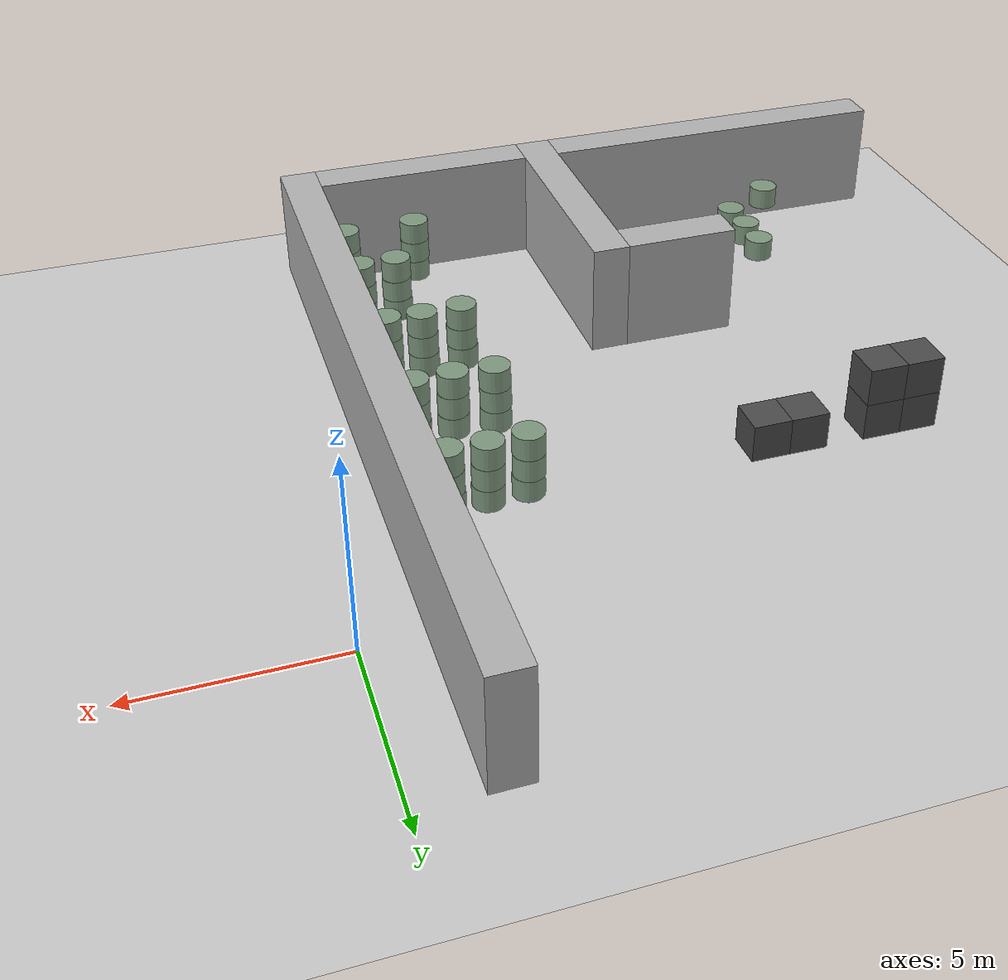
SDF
<sdf version="1.6">
 <world name="default">
  <include><uri>model://ground_plane</uri></include>
  <model name="wall_2">
   <pose>-9.0 -13.0 1.5 0 -0 0</pose>
   <static>True</static>
   <link name="link">
    <inertial>
     <mass>100</mass>
     <inertia>
      <ixx>0.166667</ixx>
      <ixy>0</ixy>
      <ixz>0</ixz>
      <iyy>0.166667</iyy>
      <iyz>0</iyz>
      <izz>0.166667</izz>
     </inertia>
    </inertial>
    <collision name="collision"><geometry><box><size>1.0 7.0 3.0</size></box></geometry></collision>
    <visual name="visual">
     <geometry><box><size>1.0 7.0 3.0</size></box></geometry>
     <material><ambient>0.7 0.7 0.7 1</ambient><diffuse>0.7 0.7 0.7 1</diffuse></material>
    </visual>
   </link>
  </model>
  <model name="wall_4">
   <pose>-2.0 -6.0 1.5 0 -0 0</pose>
   <static>True</static>
   <link name="link">
    <inertial>
     <mass>100</mass>
     <inertia>
      <ixx>0.166667</ixx>
      <ixy>0</ixy>
      <ixz>0</ixz>
      <iyy>0.166667</iyy>
      <iyz>0</iyz>
      <izz>0.166667</izz>
     </inertia>
    </inertial>
    <collision name="collision"><geometry><box><size>1.0 21.0 3.0</size></box></geometry></collision>
    <visual name="visual">
     <geometry><box><size>1.0 21.0 3.0</size></box></geometry>
     <material><ambient>0.7 0.7 0.7 1</ambient><diffuse>0.7 0.7 0.7 1</diffuse></material>
    </visual>
   </link>
  </model>
  <model name="wall_5">
   <pose>-14.5 -16.0 1.5 0 -0 0</pose>
   <static>True</static>
   <link name="link">
    <inertial>
     <mass>100</mass>
     <inertia>
      <ixx>0.166667</ixx>
      <ixy>0</ixy>
      <ixz>0</ixz>
      <iyy>0.166667</iyy>
      <iyz>0</iyz>
      <izz>0.166667</izz>
     </inertia>
    </inertial>
    <collision name="collision"><geometry><box><size>10.0 1.0 3.0</size></box></geometry></collision>
    <visual name="visual">
     <geometry><box><size>10.0 1.0 3.0</size></box></geometry>
     <material><ambient>0.7 0.7 0.7 1</ambient><diffuse>0.7 0.7 0.7 1</diffuse></material>
    </visual>
   </link>
  </model>
  <model name="wall_6">
   <pose>-5.5 -16.0 1.5 0 -0 0</pose>
   <static>True</static>
   <link name="link">
    <inertial>
     <mass>100</mass>
     <inertia>
      <ixx>0.166667</ixx>
      <ixy>0</ixy>
      <ixz>0</ixz>
      <iyy>0.166667</iyy>
      <iyz>0</iyz>
      <izz>0.166667</izz>
     </inertia>
    </inertial>
    <collision name="collision"><geometry><box><size>6.0 1.0 3.0</size></box></geometry></collision>
    <visual name="visual">
     <geometry><box><size>6.0 1.0 3.0</size></box></geometry>
     <material><ambient>0.7 0.7 0.7 1</ambient><diffuse>0.7 0.7 0.7 1</diffuse></material>
    </visual>
   </link>
  </model>
  <model name="wall_8">
   <pose>-11.0 -10.0 1.5 0 -0 0</pose>
   <static>True</static>
   <link name="link">
    <inertial>
     <mass>100</mass>
     <inertia>
      <ixx>0.166667</ixx>
      <ixy>0</ixy>
      <ixz>0</ixz>
      <iyy>0.166667</iyy>
      <iyz>0</iyz>
      <izz>0.166667</izz>
     </inertia>
    </inertial>
    <collision name="collision"><geometry><box><size>3.0 1.0 3.0</size></box></geometry></collision>
    <visual name="visual">
     <geometry><box><size>3.0 1.0 3.0</size></box></geometry>
     <material><ambient>0.7 0.7 0.7 1</ambient><diffuse>0.7 0.7 0.7 1</diffuse></material>
    </visual>
   </link>
  </model>
  <model name="unit_box_33">
   <pose>-15.0 -4.0 0.5 0 -0 0</pose>
   <static>True</static>
   <link name="link">
    <inertial>
     <mass>100</mass>
     <inertia>
      <ixx>0.166667</ixx>
      <ixy>0</ixy>
      <ixz>0</ixz>
      <iyy>0.166667</iyy>
      <iyz>0</iyz>
      <izz>0.166667</izz>
     </inertia>
    </inertial>
    <collision name="collision"><geometry><box><size>1.0 1.0 1.0</size></box></geometry></collision>
    <visual name="visual">
     <geometry><box><size>1.0 1.0 1.0</size></box></geometry>
     <material><ambient>0.3 0.3 0.3 1</ambient><diffuse>0.3 0.3 0.3 1</diffuse></material>
    </visual>
   </link>
  </model>
  <model name="unit_box_34">
   <pose>-15.0 -4.0 1.5 0 -0 0</pose>
   <static>True</static>
   <link name="link">
    <inertial>
     <mass>100</mass>
     <inertia>
      <ixx>0.166667</ixx>
      <ixy>0</ixy>
      <ixz>0</ixz>
      <iyy>0.166667</iyy>
      <iyz>0</iyz>
      <izz>0.166667</izz>
     </inertia>
    </inertial>
    <collision name="collision"><geometry><box><size>1.0 1.0 1.0</size></box></geometry></collision>
    <visual name="visual">
     <geometry><box><size>1.0 1.0 1.0</size></box></geometry>
     <material><ambient>0.3 0.3 0.3 1</ambient><diffuse>0.3 0.3 0.3 1</diffuse></material>
    </visual>
   </link>
  </model>
  <model name="unit_box_41">
   <pose>-14.0 -4.0 0.5 0 -0 0</pose>
   <static>True</static>
   <link name="link">
    <inertial>
     <mass>100</mass>
     <inertia>
      <ixx>0.166667</ixx>
      <ixy>0</ixy>
      <ixz>0</ixz>
      <iyy>0.166667</iyy>
      <iyz>0</iyz>
      <izz>0.166667</izz>
     </inertia>
    </inertial>
    <collision name="collision"><geometry><box><size>1.0 1.0 1.0</size></box></geometry></collision>
    <visual name="visual">
     <geometry><box><size>1.0 1.0 1.0</size></box></geometry>
     <material><ambient>0.3 0.3 0.3 1</ambient><diffuse>0.3 0.3 0.3 1</diffuse></material>
    </visual>
   </link>
  </model>
  <model name="unit_box_42">
   <pose>-14.0 -4.0 1.5 0 -0 0</pose>
   <static>True</static>
   <link name="link">
    <inertial>
     <mass>100</mass>
     <inertia>
      <ixx>0.166667</ixx>
      <ixy>0</ixy>
      <ixz>0</ixz>
      <iyy>0.166667</iyy>
      <iyz>0</iyz>
      <izz>0.166667</izz>
     </inertia>
    </inertial>
    <collision name="collision"><geometry><box><size>1.0 1.0 1.0</size></box></geometry></collision>
    <visual name="visual">
     <geometry><box><size>1.0 1.0 1.0</size></box></geometry>
     <material><ambient>0.3 0.3 0.3 1</ambient><diffuse>0.3 0.3 0.3 1</diffuse></material>
    </visual>
   </link>
  </model>
  <model name="unit_box_49">
   <pose>-12.0 -4.0 0.5 0 -0 0</pose>
   <static>True</static>
   <link name="link">
    <inertial>
     <mass>100</mass>
     <inertia>
      <ixx>0.166667</ixx>
      <ixy>0</ixy>
      <ixz>0</ixz>
      <iyy>0.166667</iyy>
      <iyz>0</iyz>
      <izz>0.166667</izz>
     </inertia>
    </inertial>
    <collision name="collision"><geometry><box><size>1.0 1.0 1.0</size></box></geometry></collision>
    <visual name="visual">
     <geometry><box><size>1.0 1.0 1.0</size></box></geometry>
     <material><ambient>0.3 0.3 0.3 1</ambient><diffuse>0.3 0.3 0.3 1</diffuse></material>
    </visual>
   </link>
  </model>
  <model name="unit_box_54">
   <pose>-11.0 -4.0 0.5 0 -0 0</pose>
   <static>True</static>
   <link name="link">
    <inertial>
     <mass>100</mass>
     <inertia>
      <ixx>0.166667</ixx>
      <ixy>0</ixy>
      <ixz>0</ixz>
      <iyy>0.166667</iyy>
      <iyz>0</iyz>
      <izz>0.166667</izz>
     </inertia>
    </inertial>
    <collision name="collision"><geometry><box><size>1.0 1.0 1.0</size></box></geometry></collision>
    <visual name="visual">
     <geometry><box><size>1.0 1.0 1.0</size></box></geometry>
     <material><ambient>0.3 0.3 0.3 1</ambient><diffuse>0.3 0.3 0.3 1</diffuse></material>
    </visual>
   </link>
  </model>
  <model name="unit_cylinder_35">
   <pose>-16.0017025327 -15.0174725968 0.9 0 -0 0</pose>
   <static>True</static>
   <link name="link">
    <inertial>
     <mass>100</mass>
     <inertia><ixx>0.145833</ixx><ixy>0</ixy><ixz>0</ixz><iyy>0.145833</iyy><iyz>0</iyz><izz>0.125</izz></inertia>
    </inertial>
    <collision name="collision">
     <geometry><cylinder><radius>0.4</radius><length>0.6</length></cylinder></geometry>
     <max_contacts>100</max_contacts>
    </collision>
    <visual name="visual">
     <geometry><cylinder><radius>0.4</radius><length>0.6</length></cylinder></geometry>
     <material><ambient>0.5 0.6 0.5 1</ambient><diffuse>0.5 0.6 0.5 1</diffuse></material>
    </visual>
   </link>
  </model>
  <model name="unit_cylinder_40">
   <pose>-14.9698842537 -15.032074739 0.3 0 -0 0</pose>
   <static>True</static>
   <link name="link">
    <inertial>
     <mass>100</mass>
     <inertia><ixx>0.145833</ixx><ixy>0</ixy><ixz>0</ixz><iyy>0.145833</iyy><iyz>0</iyz><izz>0.125</izz></inertia>
    </inertial>
    <collision name="collision">
     <geometry><cylinder><radius>0.4</radius><length>0.6</length></cylinder></geometry>
     <max_contacts>100</max_contacts>
    </collision>
    <visual name="visual">
     <geometry><cylinder><radius>0.4</radius><length>0.6</length></cylinder></geometry>
     <material><ambient>0.5 0.6 0.5 1</ambient><diffuse>0.5 0.6 0.5 1</diffuse></material>
    </visual>
   </link>
  </model>
  <model name="unit_cylinder_41">
   <pose>-15.0192456255 -14.0317045803 0.3 0 -0 0</pose>
   <static>True</static>
   <link name="link">
    <inertial>
     <mass>100</mass>
     <inertia><ixx>0.145833</ixx><ixy>0</ixy><ixz>0</ixz><iyy>0.145833</iyy><iyz>0</iyz><izz>0.125</izz></inertia>
    </inertial>
    <collision name="collision">
     <geometry><cylinder><radius>0.4</radius><length>0.6</length></cylinder></geometry>
     <max_contacts>100</max_contacts>
    </collision>
    <visual name="visual">
     <geometry><cylinder><radius>0.4</radius><length>0.6</length></cylinder></geometry>
     <material><ambient>0.5 0.6 0.5 1</ambient><diffuse>0.5 0.6 0.5 1</diffuse></material>
    </visual>
   </link>
  </model>
  <model name="unit_cylinder_42">
   <pose>-14.9849227295 -13.0106490481 0.3 0 -0 0</pose>
   <static>True</static>
   <link name="link">
    <inertial>
     <mass>100</mass>
     <inertia><ixx>0.145833</ixx><ixy>0</ixy><ixz>0</ixz><iyy>0.145833</iyy><iyz>0</iyz><izz>0.125</izz></inertia>
    </inertial>
    <collision name="collision">
     <geometry><cylinder><radius>0.4</radius><length>0.6</length></cylinder></geometry>
     <max_contacts>100</max_contacts>
    </collision>
    <visual name="visual">
     <geometry><cylinder><radius>0.4</radius><length>0.6</length></cylinder></geometry>
     <material><ambient>0.5 0.6 0.5 1</ambient><diffuse>0.5 0.6 0.5 1</diffuse></material>
    </visual>
   </link>
  </model>
  <model name="unit_cylinder_57">
   <pose>-4.9613804963 -15.0505166294 0.3 0 -0 0</pose>
   <static>True</static>
   <link name="link">
    <inertial>
     <mass>100</mass>
     <inertia><ixx>0.145833</ixx><ixy>0</ixy><ixz>0</ixz><iyy>0.145833</iyy><iyz>0</iyz><izz>0.125</izz></inertia>
    </inertial>
    <collision name="collision">
     <geometry><cylinder><radius>0.4</radius><length>0.6</length></cylinder></geometry>
     <max_contacts>100</max_contacts>
    </collision>
    <visual name="visual">
     <geometry><cylinder><radius>0.4</radius><length>0.6</length></cylinder></geometry>
     <material><ambient>0.5 0.6 0.5 1</ambient><diffuse>0.5 0.6 0.5 1</diffuse></material>
    </visual>
   </link>
  </model>
  <model name="unit_cylinder_58">
   <pose>-4.9767464938 -15.0407295652 0.9 0 -0 0</pose>
   <static>True</static>
   <link name="link">
    <inertial>
     <mass>100</mass>
     <inertia><ixx>0.145833</ixx><ixy>0</ixy><ixz>0</ixz><iyy>0.145833</iyy><iyz>0</iyz><izz>0.125</izz></inertia>
    </inertial>
    <collision name="collision">
     <geometry><cylinder><radius>0.4</radius><length>0.6</length></cylinder></geometry>
     <max_contacts>100</max_contacts>
    </collision>
    <visual name="visual">
     <geometry><cylinder><radius>0.4</radius><length>0.6</length></cylinder></geometry>
     <material><ambient>0.5 0.6 0.5 1</ambient><diffuse>0.5 0.6 0.5 1</diffuse></material>
    </visual>
   </link>
  </model>
  <model name="unit_cylinder_59">
   <pose>-4.97793197165 -15.0420098136 1.5 0 -0 0</pose>
   <static>True</static>
   <link name="link">
    <inertial>
     <mass>100</mass>
     <inertia><ixx>0.145833</ixx><ixy>0</ixy><ixz>0</ixz><iyy>0.145833</iyy><iyz>0</iyz><izz>0.125</izz></inertia>
    </inertial>
    <collision name="collision">
     <geometry><cylinder><radius>0.4</radius><length>0.6</length></cylinder></geometry>
     <max_contacts>100</max_contacts>
    </collision>
    <visual name="visual">
     <geometry><cylinder><radius>0.4</radius><length>0.6</length></cylinder></geometry>
     <material><ambient>0.5 0.6 0.5 1</ambient><diffuse>0.5 0.6 0.5 1</diffuse></material>
    </visual>
   </link>
  </model>
  <model name="unit_cylinder_60">
   <pose>-5.02993349026 -10.0394371652 0.3 0 -0 0</pose>
   <static>True</static>
   <link name="link">
    <inertial>
     <mass>100</mass>
     <inertia><ixx>0.145833</ixx><ixy>0</ixy><ixz>0</ixz><iyy>0.145833</iyy><iyz>0</iyz><izz>0.125</izz></inertia>
    </inertial>
    <collision name="collision">
     <geometry><cylinder><radius>0.4</radius><length>0.6</length></cylinder></geometry>
     <max_contacts>100</max_contacts>
    </collision>
    <visual name="visual">
     <geometry><cylinder><radius>0.4</radius><length>0.6</length></cylinder></geometry>
     <material><ambient>0.5 0.6 0.5 1</ambient><diffuse>0.5 0.6 0.5 1</diffuse></material>
    </visual>
   </link>
  </model>
  <model name="unit_cylinder_61">
   <pose>-5.0137740236 -10.0515571988 0.9 0 -0 0</pose>
   <static>True</static>
   <link name="link">
    <inertial>
     <mass>100</mass>
     <inertia><ixx>0.145833</ixx><ixy>0</ixy><ixz>0</ixz><iyy>0.145833</iyy><iyz>0</iyz><izz>0.125</izz></inertia>
    </inertial>
    <collision name="collision">
     <geometry><cylinder><radius>0.4</radius><length>0.6</length></cylinder></geometry>
     <max_contacts>100</max_contacts>
    </collision>
    <visual name="visual">
     <geometry><cylinder><radius>0.4</radius><length>0.6</length></cylinder></geometry>
     <material><ambient>0.5 0.6 0.5 1</ambient><diffuse>0.5 0.6 0.5 1</diffuse></material>
    </visual>
   </link>
  </model>
  <model name="unit_cylinder_62">
   <pose>-5.02421115302 -10.0470178214 1.5 0 -0 0</pose>
   <static>True</static>
   <link name="link">
    <inertial>
     <mass>100</mass>
     <inertia><ixx>0.145833</ixx><ixy>0</ixy><ixz>0</ixz><iyy>0.145833</iyy><iyz>0</iyz><izz>0.125</izz></inertia>
    </inertial>
    <collision name="collision">
     <geometry><cylinder><radius>0.4</radius><length>0.6</length></cylinder></geometry>
     <max_contacts>100</max_contacts>
    </collision>
    <visual name="visual">
     <geometry><cylinder><radius>0.4</radius><length>0.6</length></cylinder></geometry>
     <material><ambient>0.5 0.6 0.5 1</ambient><diffuse>0.5 0.6 0.5 1</diffuse></material>
    </visual>
   </link>
  </model>
  <model name="unit_cylinder_63">
   <pose>-5.03627195944 -6.96281323281 0.3 0 -0 0</pose>
   <static>True</static>
   <link name="link">
    <inertial>
     <mass>100</mass>
     <inertia><ixx>0.145833</ixx><ixy>0</ixy><ixz>0</ixz><iyy>0.145833</iyy><iyz>0</iyz><izz>0.125</izz></inertia>
    </inertial>
    <collision name="collision">
     <geometry><cylinder><radius>0.4</radius><length>0.6</length></cylinder></geometry>
     <max_contacts>100</max_contacts>
    </collision>
    <visual name="visual">
     <geometry><cylinder><radius>0.4</radius><length>0.6</length></cylinder></geometry>
     <material><ambient>0.5 0.6 0.5 1</ambient><diffuse>0.5 0.6 0.5 1</diffuse></material>
    </visual>
   </link>
  </model>
  <model name="unit_cylinder_64">
   <pose>-5.0395064097 -6.94954821753 0.9 0 -0 0</pose>
   <static>True</static>
   <link name="link">
    <inertial>
     <mass>100</mass>
     <inertia><ixx>0.145833</ixx><ixy>0</ixy><ixz>0</ixz><iyy>0.145833</iyy><iyz>0</iyz><izz>0.125</izz></inertia>
    </inertial>
    <collision name="collision">
     <geometry><cylinder><radius>0.4</radius><length>0.6</length></cylinder></geometry>
     <max_contacts>100</max_contacts>
    </collision>
    <visual name="visual">
     <geometry><cylinder><radius>0.4</radius><length>0.6</length></cylinder></geometry>
     <material><ambient>0.5 0.6 0.5 1</ambient><diffuse>0.5 0.6 0.5 1</diffuse></material>
    </visual>
   </link>
  </model>
  <model name="unit_cylinder_65">
   <pose>-5.02651449218 -6.94645388442 1.5 0 -0 0</pose>
   <static>True</static>
   <link name="link">
    <inertial>
     <mass>100</mass>
     <inertia><ixx>0.145833</ixx><ixy>0</ixy><ixz>0</ixz><iyy>0.145833</iyy><iyz>0</iyz><izz>0.125</izz></inertia>
    </inertial>
    <collision name="collision">
     <geometry><cylinder><radius>0.4</radius><length>0.6</length></cylinder></geometry>
     <max_contacts>100</max_contacts>
    </collision>
    <visual name="visual">
     <geometry><cylinder><radius>0.4</radius><length>0.6</length></cylinder></geometry>
     <material><ambient>0.5 0.6 0.5 1</ambient><diffuse>0.5 0.6 0.5 1</diffuse></material>
    </visual>
   </link>
  </model>
  <model name="unit_cylinder_66">
   <pose>-4.98067379862 -4.03220142835 0.3 0 -0 0</pose>
   <static>True</static>
   <link name="link">
    <inertial>
     <mass>100</mass>
     <inertia><ixx>0.145833</ixx><ixy>0</ixy><ixz>0</ixz><iyy>0.145833</iyy><iyz>0</iyz><izz>0.125</izz></inertia>
    </inertial>
    <collision name="collision">
     <geometry><cylinder><radius>0.4</radius><length>0.6</length></cylinder></geometry>
     <max_contacts>100</max_contacts>
    </collision>
    <visual name="visual">
     <geometry><cylinder><radius>0.4</radius><length>0.6</length></cylinder></geometry>
     <material><ambient>0.5 0.6 0.5 1</ambient><diffuse>0.5 0.6 0.5 1</diffuse></material>
    </visual>
   </link>
  </model>
  <model name="unit_cylinder_67">
   <pose>-4.99005417756 -4.01496946569 0.9 0 -0 0</pose>
   <static>True</static>
   <link name="link">
    <inertial>
     <mass>100</mass>
     <inertia><ixx>0.145833</ixx><ixy>0</ixy><ixz>0</ixz><iyy>0.145833</iyy><iyz>0</iyz><izz>0.125</izz></inertia>
    </inertial>
    <collision name="collision">
     <geometry><cylinder><radius>0.4</radius><length>0.6</length></cylinder></geometry>
     <max_contacts>100</max_contacts>
    </collision>
    <visual name="visual">
     <geometry><cylinder><radius>0.4</radius><length>0.6</length></cylinder></geometry>
     <material><ambient>0.5 0.6 0.5 1</ambient><diffuse>0.5 0.6 0.5 1</diffuse></material>
    </visual>
   </link>
  </model>
  <model name="unit_cylinder_68">
   <pose>-4.98824274757 -4.02148110509 1.5 0 -0 0</pose>
   <static>True</static>
   <link name="link">
    <inertial>
     <mass>100</mass>
     <inertia><ixx>0.145833</ixx><ixy>0</ixy><ixz>0</ixz><iyy>0.145833</iyy><iyz>0</iyz><izz>0.125</izz></inertia>
    </inertial>
    <collision name="collision">
     <geometry><cylinder><radius>0.4</radius><length>0.6</length></cylinder></geometry>
     <max_contacts>100</max_contacts>
    </collision>
    <visual name="visual">
     <geometry><cylinder><radius>0.4</radius><length>0.6</length></cylinder></geometry>
     <material><ambient>0.5 0.6 0.5 1</ambient><diffuse>0.5 0.6 0.5 1</diffuse></material>
    </visual>
   </link>
  </model>
  <model name="unit_cylinder_93">
   <pose>-3.97071783579 -13.0165062579 0.3 0 -0 0</pose>
   <static>True</static>
   <link name="link">
    <inertial>
     <mass>100</mass>
     <inertia><ixx>0.145833</ixx><ixy>0</ixy><ixz>0</ixz><iyy>0.145833</iyy><iyz>0</iyz><izz>0.125</izz></inertia>
    </inertial>
    <collision name="collision">
     <geometry><cylinder><radius>0.4</radius><length>0.6</length></cylinder></geometry>
     <max_contacts>100</max_contacts>
    </collision>
    <visual name="visual">
     <geometry><cylinder><radius>0.4</radius><length>0.6</length></cylinder></geometry>
     <material><ambient>0.5 0.6 0.5 1</ambient><diffuse>0.5 0.6 0.5 1</diffuse></material>
    </visual>
   </link>
  </model>
  <model name="unit_cylinder_94">
   <pose>-3.95868086076 -13.0135344361 0.9 0 -0 0</pose>
   <static>True</static>
   <link name="link">
    <inertial>
     <mass>100</mass>
     <inertia><ixx>0.145833</ixx><ixy>0</ixy><ixz>0</ixz><iyy>0.145833</iyy><iyz>0</iyz><izz>0.125</izz></inertia>
    </inertial>
    <collision name="collision">
     <geometry><cylinder><radius>0.4</radius><length>0.6</length></cylinder></geometry>
     <max_contacts>100</max_contacts>
    </collision>
    <visual name="visual">
     <geometry><cylinder><radius>0.4</radius><length>0.6</length></cylinder></geometry>
     <material><ambient>0.5 0.6 0.5 1</ambient><diffuse>0.5 0.6 0.5 1</diffuse></material>
    </visual>
   </link>
  </model>
  <model name="unit_cylinder_95">
   <pose>-3.97060965991 -13.0276132331 1.5 0 -0 0</pose>
   <static>True</static>
   <link name="link">
    <inertial>
     <mass>100</mass>
     <inertia><ixx>0.145833</ixx><ixy>0</ixy><ixz>0</ixz><iyy>0.145833</iyy><iyz>0</iyz><izz>0.125</izz></inertia>
    </inertial>
    <collision name="collision">
     <geometry><cylinder><radius>0.4</radius><length>0.6</length></cylinder></geometry>
     <max_contacts>100</max_contacts>
    </collision>
    <visual name="visual">
     <geometry><cylinder><radius>0.4</radius><length>0.6</length></cylinder></geometry>
     <material><ambient>0.5 0.6 0.5 1</ambient><diffuse>0.5 0.6 0.5 1</diffuse></material>
    </visual>
   </link>
  </model>
  <model name="unit_cylinder_96">
   <pose>-3.95991960837 -9.98126166184 0.3 0 -0 0</pose>
   <static>True</static>
   <link name="link">
    <inertial>
     <mass>100</mass>
     <inertia><ixx>0.145833</ixx><ixy>0</ixy><ixz>0</ixz><iyy>0.145833</iyy><iyz>0</iyz><izz>0.125</izz></inertia>
    </inertial>
    <collision name="collision">
     <geometry><cylinder><radius>0.4</radius><length>0.6</length></cylinder></geometry>
     <max_contacts>100</max_contacts>
    </collision>
    <visual name="visual">
     <geometry><cylinder><radius>0.4</radius><length>0.6</length></cylinder></geometry>
     <material><ambient>0.5 0.6 0.5 1</ambient><diffuse>0.5 0.6 0.5 1</diffuse></material>
    </visual>
   </link>
  </model>
  <model name="unit_cylinder_97">
   <pose>-3.95095692352 -9.97891396161 0.9 0 -0 0</pose>
   <static>True</static>
   <link name="link">
    <inertial>
     <mass>100</mass>
     <inertia><ixx>0.145833</ixx><ixy>0</ixy><ixz>0</ixz><iyy>0.145833</iyy><iyz>0</iyz><izz>0.125</izz></inertia>
    </inertial>
    <collision name="collision">
     <geometry><cylinder><radius>0.4</radius><length>0.6</length></cylinder></geometry>
     <max_contacts>100</max_contacts>
    </collision>
    <visual name="visual">
     <geometry><cylinder><radius>0.4</radius><length>0.6</length></cylinder></geometry>
     <material><ambient>0.5 0.6 0.5 1</ambient><diffuse>0.5 0.6 0.5 1</diffuse></material>
    </visual>
   </link>
  </model>
  <model name="unit_cylinder_98">
   <pose>-3.95125543398 -9.97886405148 1.5 0 -0 0</pose>
   <static>True</static>
   <link name="link">
    <inertial>
     <mass>100</mass>
     <inertia><ixx>0.145833</ixx><ixy>0</ixy><ixz>0</ixz><iyy>0.145833</iyy><iyz>0</iyz><izz>0.125</izz></inertia>
    </inertial>
    <collision name="collision">
     <geometry><cylinder><radius>0.4</radius><length>0.6</length></cylinder></geometry>
     <max_contacts>100</max_contacts>
    </collision>
    <visual name="visual">
     <geometry><cylinder><radius>0.4</radius><length>0.6</length></cylinder></geometry>
     <material><ambient>0.5 0.6 0.5 1</ambient><diffuse>0.5 0.6 0.5 1</diffuse></material>
    </visual>
   </link>
  </model>
  <model name="unit_cylinder_99">
   <pose>-3.96183076261 -7.01177499668 0.3 0 -0 0</pose>
   <static>True</static>
   <link name="link">
    <inertial>
     <mass>100</mass>
     <inertia><ixx>0.145833</ixx><ixy>0</ixy><ixz>0</ixz><iyy>0.145833</iyy><iyz>0</iyz><izz>0.125</izz></inertia>
    </inertial>
    <collision name="collision">
     <geometry><cylinder><radius>0.4</radius><length>0.6</length></cylinder></geometry>
     <max_contacts>100</max_contacts>
    </collision>
    <visual name="visual">
     <geometry><cylinder><radius>0.4</radius><length>0.6</length></cylinder></geometry>
     <material><ambient>0.5 0.6 0.5 1</ambient><diffuse>0.5 0.6 0.5 1</diffuse></material>
    </visual>
   </link>
  </model>
  <model name="unit_cylinder_100">
   <pose>-3.96857562338 -7.01247402445 0.9 0 -0 0</pose>
   <static>True</static>
   <link name="link">
    <inertial>
     <mass>100</mass>
     <inertia><ixx>0.145833</ixx><ixy>0</ixy><ixz>0</ixz><iyy>0.145833</iyy><iyz>0</iyz><izz>0.125</izz></inertia>
    </inertial>
    <collision name="collision">
     <geometry><cylinder><radius>0.4</radius><length>0.6</length></cylinder></geometry>
     <max_contacts>100</max_contacts>
    </collision>
    <visual name="visual">
     <geometry><cylinder><radius>0.4</radius><length>0.6</length></cylinder></geometry>
     <material><ambient>0.5 0.6 0.5 1</ambient><diffuse>0.5 0.6 0.5 1</diffuse></material>
    </visual>
   </link>
  </model>
  <model name="unit_cylinder_101">
   <pose>-3.98068333741 -7.01408305663 1.5 0 -0 0</pose>
   <static>True</static>
   <link name="link">
    <inertial>
     <mass>100</mass>
     <inertia><ixx>0.145833</ixx><ixy>0</ixy><ixz>0</ixz><iyy>0.145833</iyy><iyz>0</iyz><izz>0.125</izz></inertia>
    </inertial>
    <collision name="collision">
     <geometry><cylinder><radius>0.4</radius><length>0.6</length></cylinder></geometry>
     <max_contacts>100</max_contacts>
    </collision>
    <visual name="visual">
     <geometry><cylinder><radius>0.4</radius><length>0.6</length></cylinder></geometry>
     <material><ambient>0.5 0.6 0.5 1</ambient><diffuse>0.5 0.6 0.5 1</diffuse></material>
    </visual>
   </link>
  </model>
  <model name="unit_cylinder_102">
   <pose>-3.97527999582 -3.96404059407 0.3 0 -0 0</pose>
   <static>True</static>
   <link name="link">
    <inertial>
     <mass>100</mass>
     <inertia><ixx>0.145833</ixx><ixy>0</ixy><ixz>0</ixz><iyy>0.145833</iyy><iyz>0</iyz><izz>0.125</izz></inertia>
    </inertial>
    <collision name="collision">
     <geometry><cylinder><radius>0.4</radius><length>0.6</length></cylinder></geometry>
     <max_contacts>100</max_contacts>
    </collision>
    <visual name="visual">
     <geometry><cylinder><radius>0.4</radius><length>0.6</length></cylinder></geometry>
     <material><ambient>0.5 0.6 0.5 1</ambient><diffuse>0.5 0.6 0.5 1</diffuse></material>
    </visual>
   </link>
  </model>
  <model name="unit_cylinder_103">
   <pose>-3.98447253608 -3.95962011263 0.9 0 -0 0</pose>
   <static>True</static>
   <link name="link">
    <inertial>
     <mass>100</mass>
     <inertia><ixx>0.145833</ixx><ixy>0</ixy><ixz>0</ixz><iyy>0.145833</iyy><iyz>0</iyz><izz>0.125</izz></inertia>
    </inertial>
    <collision name="collision">
     <geometry><cylinder><radius>0.4</radius><length>0.6</length></cylinder></geometry>
     <max_contacts>100</max_contacts>
    </collision>
    <visual name="visual">
     <geometry><cylinder><radius>0.4</radius><length>0.6</length></cylinder></geometry>
     <material><ambient>0.5 0.6 0.5 1</ambient><diffuse>0.5 0.6 0.5 1</diffuse></material>
    </visual>
   </link>
  </model>
  <model name="unit_cylinder_104">
   <pose>-3.98907732058 -3.95727264878 1.5 0 -0 0</pose>
   <static>True</static>
   <link name="link">
    <inertial>
     <mass>100</mass>
     <inertia><ixx>0.145833</ixx><ixy>0</ixy><ixz>0</ixz><iyy>0.145833</iyy><iyz>0</iyz><izz>0.125</izz></inertia>
    </inertial>
    <collision name="collision">
     <geometry><cylinder><radius>0.4</radius><length>0.6</length></cylinder></geometry>
     <max_contacts>100</max_contacts>
    </collision>
    <visual name="visual">
     <geometry><cylinder><radius>0.4</radius><length>0.6</length></cylinder></geometry>
     <material><ambient>0.5 0.6 0.5 1</ambient><diffuse>0.5 0.6 0.5 1</diffuse></material>
    </visual>
   </link>
  </model>
  <model name="unit_cylinder_132">
   <pose>-2.97357178313 -14.9976189769 0.3 0 -0 0</pose>
   <static>True</static>
   <link name="link">
    <inertial>
     <mass>100</mass>
     <inertia><ixx>0.145833</ixx><ixy>0</ixy><ixz>0</ixz><iyy>0.145833</iyy><iyz>0</iyz><izz>0.125</izz></inertia>
    </inertial>
    <collision name="collision">
     <geometry><cylinder><radius>0.4</radius><length>0.6</length></cylinder></geometry>
     <max_contacts>100</max_contacts>
    </collision>
    <visual name="visual">
     <geometry><cylinder><radius>0.4</radius><length>0.6</length></cylinder></geometry>
     <material><ambient>0.5 0.6 0.5 1</ambient><diffuse>0.5 0.6 0.5 1</diffuse></material>
    </visual>
   </link>
  </model>
  <model name="unit_cylinder_133">
   <pose>-2.96700424633 -14.9997528667 0.9 0 -0 0</pose>
   <static>True</static>
   <link name="link">
    <inertial>
     <mass>100</mass>
     <inertia><ixx>0.145833</ixx><ixy>0</ixy><ixz>0</ixz><iyy>0.145833</iyy><iyz>0</iyz><izz>0.125</izz></inertia>
    </inertial>
    <collision name="collision">
     <geometry><cylinder><radius>0.4</radius><length>0.6</length></cylinder></geometry>
     <max_contacts>100</max_contacts>
    </collision>
    <visual name="visual">
     <geometry><cylinder><radius>0.4</radius><length>0.6</length></cylinder></geometry>
     <material><ambient>0.5 0.6 0.5 1</ambient><diffuse>0.5 0.6 0.5 1</diffuse></material>
    </visual>
   </link>
  </model>
  <model name="unit_cylinder_134">
   <pose>-2.95937516596 -14.9889029086 1.5 0 -0 0</pose>
   <static>True</static>
   <link name="link">
    <inertial>
     <mass>100</mass>
     <inertia><ixx>0.145833</ixx><ixy>0</ixy><ixz>0</ixz><iyy>0.145833</iyy><iyz>0</iyz><izz>0.125</izz></inertia>
    </inertial>
    <collision name="collision">
     <geometry><cylinder><radius>0.4</radius><length>0.6</length></cylinder></geometry>
     <max_contacts>100</max_contacts>
    </collision>
    <visual name="visual">
     <geometry><cylinder><radius>0.4</radius><length>0.6</length></cylinder></geometry>
     <material><ambient>0.5 0.6 0.5 1</ambient><diffuse>0.5 0.6 0.5 1</diffuse></material>
    </visual>
   </link>
  </model>
  <model name="unit_cylinder_135">
   <pose>-2.95964669556 -12.9951237678 0.3 0 -0 0</pose>
   <static>True</static>
   <link name="link">
    <inertial>
     <mass>100</mass>
     <inertia><ixx>0.145833</ixx><ixy>0</ixy><ixz>0</ixz><iyy>0.145833</iyy><iyz>0</iyz><izz>0.125</izz></inertia>
    </inertial>
    <collision name="collision">
     <geometry><cylinder><radius>0.4</radius><length>0.6</length></cylinder></geometry>
     <max_contacts>100</max_contacts>
    </collision>
    <visual name="visual">
     <geometry><cylinder><radius>0.4</radius><length>0.6</length></cylinder></geometry>
     <material><ambient>0.5 0.6 0.5 1</ambient><diffuse>0.5 0.6 0.5 1</diffuse></material>
    </visual>
   </link>
  </model>
  <model name="unit_cylinder_136">
   <pose>-2.97264499791 -12.999299513 0.9 0 -0 0</pose>
   <static>True</static>
   <link name="link">
    <inertial>
     <mass>100</mass>
     <inertia><ixx>0.145833</ixx><ixy>0</ixy><ixz>0</ixz><iyy>0.145833</iyy><iyz>0</iyz><izz>0.125</izz></inertia>
    </inertial>
    <collision name="collision">
     <geometry><cylinder><radius>0.4</radius><length>0.6</length></cylinder></geometry>
     <max_contacts>100</max_contacts>
    </collision>
    <visual name="visual">
     <geometry><cylinder><radius>0.4</radius><length>0.6</length></cylinder></geometry>
     <material><ambient>0.5 0.6 0.5 1</ambient><diffuse>0.5 0.6 0.5 1</diffuse></material>
    </visual>
   </link>
  </model>
  <model name="unit_cylinder_137">
   <pose>-2.96647903734 -12.9965241304 1.5 0 -0 0</pose>
   <static>True</static>
   <link name="link">
    <inertial>
     <mass>100</mass>
     <inertia><ixx>0.145833</ixx><ixy>0</ixy><ixz>0</ixz><iyy>0.145833</iyy><iyz>0</iyz><izz>0.125</izz></inertia>
    </inertial>
    <collision name="collision">
     <geometry><cylinder><radius>0.4</radius><length>0.6</length></cylinder></geometry>
     <max_contacts>100</max_contacts>
    </collision>
    <visual name="visual">
     <geometry><cylinder><radius>0.4</radius><length>0.6</length></cylinder></geometry>
     <material><ambient>0.5 0.6 0.5 1</ambient><diffuse>0.5 0.6 0.5 1</diffuse></material>
    </visual>
   </link>
  </model>
  <model name="unit_cylinder_138">
   <pose>-3.00488967917 -10.0154534569 0.3 0 -0 0</pose>
   <static>True</static>
   <link name="link">
    <inertial>
     <mass>100</mass>
     <inertia><ixx>0.145833</ixx><ixy>0</ixy><ixz>0</ixz><iyy>0.145833</iyy><iyz>0</iyz><izz>0.125</izz></inertia>
    </inertial>
    <collision name="collision">
     <geometry><cylinder><radius>0.4</radius><length>0.6</length></cylinder></geometry>
     <max_contacts>100</max_contacts>
    </collision>
    <visual name="visual">
     <geometry><cylinder><radius>0.4</radius><length>0.6</length></cylinder></geometry>
     <material><ambient>0.5 0.6 0.5 1</ambient><diffuse>0.5 0.6 0.5 1</diffuse></material>
    </visual>
   </link>
  </model>
  <model name="unit_cylinder_139">
   <pose>-3.01502926067 -10.0315904875 0.9 0 -0 0</pose>
   <static>True</static>
   <link name="link">
    <inertial>
     <mass>100</mass>
     <inertia><ixx>0.145833</ixx><ixy>0</ixy><ixz>0</ixz><iyy>0.145833</iyy><iyz>0</iyz><izz>0.125</izz></inertia>
    </inertial>
    <collision name="collision">
     <geometry><cylinder><radius>0.4</radius><length>0.6</length></cylinder></geometry>
     <max_contacts>100</max_contacts>
    </collision>
    <visual name="visual">
     <geometry><cylinder><radius>0.4</radius><length>0.6</length></cylinder></geometry>
     <material><ambient>0.5 0.6 0.5 1</ambient><diffuse>0.5 0.6 0.5 1</diffuse></material>
    </visual>
   </link>
  </model>
  <model name="unit_cylinder_140">
   <pose>-3.00426868881 -10.0278293434 1.5 0 -0 0</pose>
   <static>True</static>
   <link name="link">
    <inertial>
     <mass>100</mass>
     <inertia><ixx>0.145833</ixx><ixy>0</ixy><ixz>0</ixz><iyy>0.145833</iyy><iyz>0</iyz><izz>0.125</izz></inertia>
    </inertial>
    <collision name="collision">
     <geometry><cylinder><radius>0.4</radius><length>0.6</length></cylinder></geometry>
     <max_contacts>100</max_contacts>
    </collision>
    <visual name="visual">
     <geometry><cylinder><radius>0.4</radius><length>0.6</length></cylinder></geometry>
     <material><ambient>0.5 0.6 0.5 1</ambient><diffuse>0.5 0.6 0.5 1</diffuse></material>
    </visual>
   </link>
  </model>
  <model name="unit_cylinder_141">
   <pose>-2.97669687048 -6.96189665599 0.3 0 -0 0</pose>
   <static>True</static>
   <link name="link">
    <inertial>
     <mass>100</mass>
     <inertia><ixx>0.145833</ixx><ixy>0</ixy><ixz>0</ixz><iyy>0.145833</iyy><iyz>0</iyz><izz>0.125</izz></inertia>
    </inertial>
    <collision name="collision">
     <geometry><cylinder><radius>0.4</radius><length>0.6</length></cylinder></geometry>
     <max_contacts>100</max_contacts>
    </collision>
    <visual name="visual">
     <geometry><cylinder><radius>0.4</radius><length>0.6</length></cylinder></geometry>
     <material><ambient>0.5 0.6 0.5 1</ambient><diffuse>0.5 0.6 0.5 1</diffuse></material>
    </visual>
   </link>
  </model>
  <model name="unit_cylinder_142">
   <pose>-2.96110853464 -6.97066964325 0.9 0 -0 0</pose>
   <static>True</static>
   <link name="link">
    <inertial>
     <mass>100</mass>
     <inertia><ixx>0.145833</ixx><ixy>0</ixy><ixz>0</ixz><iyy>0.145833</iyy><iyz>0</iyz><izz>0.125</izz></inertia>
    </inertial>
    <collision name="collision">
     <geometry><cylinder><radius>0.4</radius><length>0.6</length></cylinder></geometry>
     <max_contacts>100</max_contacts>
    </collision>
    <visual name="visual">
     <geometry><cylinder><radius>0.4</radius><length>0.6</length></cylinder></geometry>
     <material><ambient>0.5 0.6 0.5 1</ambient><diffuse>0.5 0.6 0.5 1</diffuse></material>
    </visual>
   </link>
  </model>
  <model name="unit_cylinder_143">
   <pose>-2.97127383792 -6.96464199316 1.5 0 -0 0</pose>
   <static>True</static>
   <link name="link">
    <inertial>
     <mass>100</mass>
     <inertia><ixx>0.145833</ixx><ixy>0</ixy><ixz>0</ixz><iyy>0.145833</iyy><iyz>0</iyz><izz>0.125</izz></inertia>
    </inertial>
    <collision name="collision">
     <geometry><cylinder><radius>0.4</radius><length>0.6</length></cylinder></geometry>
     <max_contacts>100</max_contacts>
    </collision>
    <visual name="visual">
     <geometry><cylinder><radius>0.4</radius><length>0.6</length></cylinder></geometry>
     <material><ambient>0.5 0.6 0.5 1</ambient><diffuse>0.5 0.6 0.5 1</diffuse></material>
    </visual>
   </link>
  </model>
  <model name="unit_cylinder_144">
   <pose>-3.03079067007 -3.97500164381 0.3 0 -0 0</pose>
   <static>True</static>
   <link name="link">
    <inertial>
     <mass>100</mass>
     <inertia><ixx>0.145833</ixx><ixy>0</ixy><ixz>0</ixz><iyy>0.145833</iyy><iyz>0</iyz><izz>0.125</izz></inertia>
    </inertial>
    <collision name="collision">
     <geometry><cylinder><radius>0.4</radius><length>0.6</length></cylinder></geometry>
     <max_contacts>100</max_contacts>
    </collision>
    <visual name="visual">
     <geometry><cylinder><radius>0.4</radius><length>0.6</length></cylinder></geometry>
     <material><ambient>0.5 0.6 0.5 1</ambient><diffuse>0.5 0.6 0.5 1</diffuse></material>
    </visual>
   </link>
  </model>
  <model name="unit_cylinder_145">
   <pose>-3.01378373712 -3.9644359837 0.9 0 -0 0</pose>
   <static>True</static>
   <link name="link">
    <inertial>
     <mass>100</mass>
     <inertia><ixx>0.145833</ixx><ixy>0</ixy><ixz>0</ixz><iyy>0.145833</iyy><iyz>0</iyz><izz>0.125</izz></inertia>
    </inertial>
    <collision name="collision">
     <geometry><cylinder><radius>0.4</radius><length>0.6</length></cylinder></geometry>
     <max_contacts>100</max_contacts>
    </collision>
    <visual name="visual">
     <geometry><cylinder><radius>0.4</radius><length>0.6</length></cylinder></geometry>
     <material><ambient>0.5 0.6 0.5 1</ambient><diffuse>0.5 0.6 0.5 1</diffuse></material>
    </visual>
   </link>
  </model>
  <model name="unit_cylinder_146">
   <pose>-3.01647811029 -3.97308692553 1.5 0 -0 0</pose>
   <static>True</static>
   <link name="link">
    <inertial>
     <mass>100</mass>
     <inertia><ixx>0.145833</ixx><ixy>0</ixy><ixz>0</ixz><iyy>0.145833</iyy><iyz>0</iyz><izz>0.125</izz></inertia>
    </inertial>
    <collision name="collision">
     <geometry><cylinder><radius>0.4</radius><length>0.6</length></cylinder></geometry>
     <max_contacts>100</max_contacts>
    </collision>
    <visual name="visual">
     <geometry><cylinder><radius>0.4</radius><length>0.6</length></cylinder></geometry>
     <material><ambient>0.5 0.6 0.5 1</ambient><diffuse>0.5 0.6 0.5 1</diffuse></material>
    </visual>
   </link>
  </model>
 </world>
</sdf>
